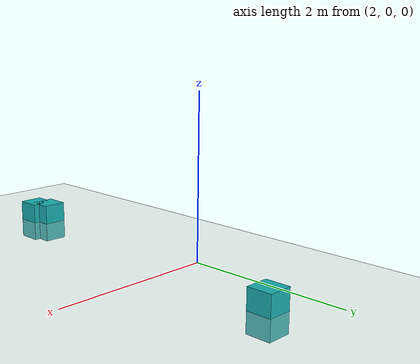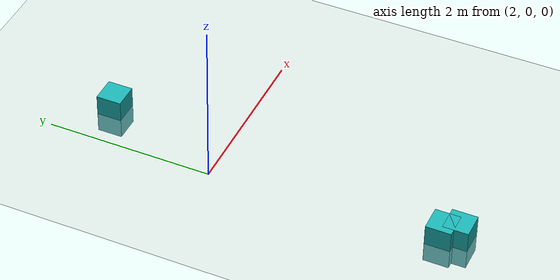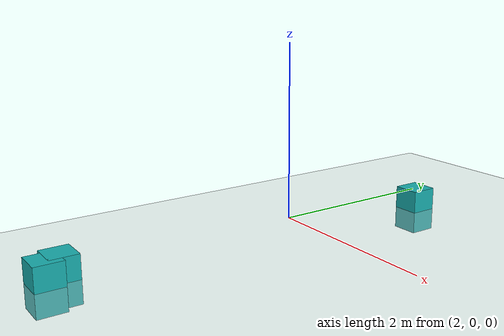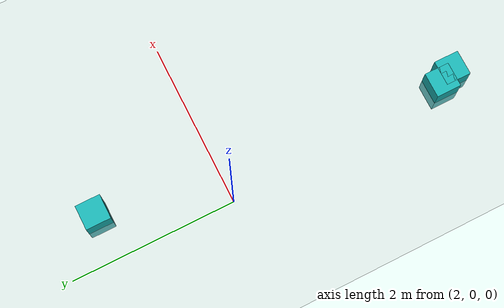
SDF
<sdf version="1.7">
 <world name="default">
  <model name="ground_plane">
   <static>1</static>
   <link name="link">
    <collision name="collision">
     <geometry><plane><normal>0 0 1</normal><size>100 100</size></plane></geometry>
     <surface><friction><ode><mu>100</mu><mu2>50</mu2></ode></friction></surface>
    </collision>
    <visual name="visual">
     <cast_shadows>0</cast_shadows>
     <geometry><plane><normal>0 0 1</normal><size>100 100</size></plane></geometry>
     <material>
      <script><uri>file://media/materials/scripts/gazebo.material</uri><name>Gazebo/Grey</name></script>
     </material>
    </visual>
   </link>
  </model>
  <model name="unit_box_0.3_heavy">
   <link name="link">
    <inertial>
     <mass>100</mass>
     <inertia><ixx>1.5</ixx><ixy>0</ixy><ixz>0</ixz><iyy>1.5</iyy><iyz>0</iyz><izz>1.5</izz></inertia>
    </inertial>
    <visual name="visual">
     <geometry><box><size>0.3 0.3 0.5</size></box></geometry>
     <material>
      <script><name>Gazebo/Grey</name><uri>file://media/materials/scripts/gazebo.material</uri></script>
      <shader type="pixel"><normal_map>__default__</normal_map></shader>
      <ambient>0.1 0.7 0.7 1</ambient>
      <diffuse>0.7 0.7 0.7 1</diffuse>
      <specular>0.01 0.01 0.01 1</specular>
      <emissive>0 0 0 1</emissive>
     </material>
    </visual>
    <collision name="collision">
     <geometry><box><size>0.3 0.3 0.5</size></box></geometry>
     <surface>
      <friction>
       <ode><mu>1</mu><mu2>1</mu2><fdir1>0 0 0</fdir1><slip1>0</slip1><slip2>0</slip2></ode>
       <torsional>
        <coefficient>1</coefficient>
        <patch_radius>0</patch_radius>
        <surface_radius>0</surface_radius>
        <use_patch_radius>1</use_patch_radius>
        <ode><slip>0</slip></ode>
       </torsional>
      </friction>
      <bounce><restitution_coefficient>0</restitution_coefficient><threshold>1e+06</threshold></bounce>
      <contact>
       <collide_without_contact>0</collide_without_contact>
       <collide_without_contact_bitmask>1</collide_without_contact_bitmask>
       <collide_bitmask>1</collide_bitmask>
       <ode>
        <soft_cfm>0</soft_cfm>
        <soft_erp>0.2</soft_erp>
        <kp>1e+13</kp>
        <kd>1</kd>
        <max_vel>0.01</max_vel>
        <min_depth>0</min_depth>
       </ode>
       <bullet>
        <split_impulse>1</split_impulse>
        <split_impulse_penetration_threshold>-0.01</split_impulse_penetration_threshold>
        <soft_cfm>0</soft_cfm>
        <soft_erp>0.2</soft_erp>
        <kp>1e+13</kp>
        <kd>1</kd>
       </bullet>
      </contact>
     </surface>
    </collision>
   </link>
   <static>1</static>
   <pose>2.55116 1.46104 0 0 -0 0</pose>
  </model>
  <model name="unit_box_0.3_heavy_clone_3">
   <link name="link">
    <inertial>
     <mass>100</mass>
     <inertia><ixx>1.5</ixx><ixy>0</ixy><ixz>0</ixz><iyy>1.5</iyy><iyz>0</iyz><izz>1.5</izz></inertia>
    </inertial>
    <visual name="visual">
     <geometry><box><size>0.3 0.3 0.5</size></box></geometry>
     <material>
      <script><name>Gazebo/Grey</name><uri>file://media/materials/scripts/gazebo.material</uri></script>
      <shader type="pixel"><normal_map>__default__</normal_map></shader>
      <ambient>0.1 0.7 0.7 1</ambient>
      <diffuse>0.7 0.7 0.7 1</diffuse>
      <specular>0.01 0.01 0.01 1</specular>
      <emissive>0 0 0 1</emissive>
     </material>
    </visual>
    <collision name="collision">
     <geometry><box><size>0.3 0.3 0.5</size></box></geometry>
     <surface>
      <friction>
       <ode><mu>1</mu><mu2>1</mu2><fdir1>0 0 0</fdir1><slip1>0</slip1><slip2>0</slip2></ode>
       <torsional>
        <coefficient>1</coefficient>
        <patch_radius>0</patch_radius>
        <surface_radius>0</surface_radius>
        <use_patch_radius>1</use_patch_radius>
        <ode><slip>0</slip></ode>
       </torsional>
      </friction>
      <bounce><restitution_coefficient>0</restitution_coefficient><threshold>1e+06</threshold></bounce>
      <contact>
       <collide_without_contact>0</collide_without_contact>
       <collide_without_contact_bitmask>1</collide_without_contact_bitmask>
       <collide_bitmask>1</collide_bitmask>
       <ode>
        <soft_cfm>0</soft_cfm>
        <soft_erp>0.2</soft_erp>
        <kp>1e+13</kp>
        <kd>1</kd>
        <max_vel>0.01</max_vel>
        <min_depth>0</min_depth>
       </ode>
       <bullet>
        <split_impulse>1</split_impulse>
        <split_impulse_penetration_threshold>-0.01</split_impulse_penetration_threshold>
        <soft_cfm>0</soft_cfm>
        <soft_erp>0.2</soft_erp>
        <kp>1e+13</kp>
        <kd>1</kd>
       </bullet>
      </contact>
     </surface>
    </collision>
   </link>
   <static>1</static>
   <pose>2.13984 -2.73394 0 0 -0 0</pose>
  </model>
  <model name="unit_box_0.3_heavy_clone_4">
   <link name="link">
    <inertial>
     <mass>100</mass>
     <inertia><ixx>1.5</ixx><ixy>0</ixy><ixz>0</ixz><iyy>1.5</iyy><iyz>0</iyz><izz>1.5</izz></inertia>
    </inertial>
    <visual name="visual">
     <geometry><box><size>0.3 0.3 0.5</size></box></geometry>
     <material>
      <script><name>Gazebo/Grey</name><uri>file://media/materials/scripts/gazebo.material</uri></script>
      <shader type="pixel"><normal_map>__default__</normal_map></shader>
      <ambient>0.1 0.7 0.7 1</ambient>
      <diffuse>0.7 0.7 0.7 1</diffuse>
      <specular>0.01 0.01 0.01 1</specular>
      <emissive>0 0 0 1</emissive>
     </material>
    </visual>
    <collision name="collision">
     <geometry><box><size>0.3 0.3 0.5</size></box></geometry>
     <surface>
      <friction>
       <ode><mu>1</mu><mu2>1</mu2><fdir1>0 0 0</fdir1><slip1>0</slip1><slip2>0</slip2></ode>
       <torsional>
        <coefficient>1</coefficient>
        <patch_radius>0</patch_radius>
        <surface_radius>0</surface_radius>
        <use_patch_radius>1</use_patch_radius>
        <ode><slip>0</slip></ode>
       </torsional>
      </friction>
      <bounce><restitution_coefficient>0</restitution_coefficient><threshold>1e+06</threshold></bounce>
      <contact>
       <collide_without_contact>0</collide_without_contact>
       <collide_without_contact_bitmask>1</collide_without_contact_bitmask>
       <collide_bitmask>1</collide_bitmask>
       <ode>
        <soft_cfm>0</soft_cfm>
        <soft_erp>0.2</soft_erp>
        <kp>1e+13</kp>
        <kd>1</kd>
        <max_vel>0.01</max_vel>
        <min_depth>0</min_depth>
       </ode>
       <bullet>
        <split_impulse>1</split_impulse>
        <split_impulse_penetration_threshold>-0.01</split_impulse_penetration_threshold>
        <soft_cfm>0</soft_cfm>
        <soft_erp>0.2</soft_erp>
        <kp>1e+13</kp>
        <kd>1</kd>
       </bullet>
      </contact>
     </surface>
    </collision>
   </link>
   <static>1</static>
   <pose>2.2171 -2.90142 0 0 -0 0</pose>
  </model>
 </world>
</sdf>
